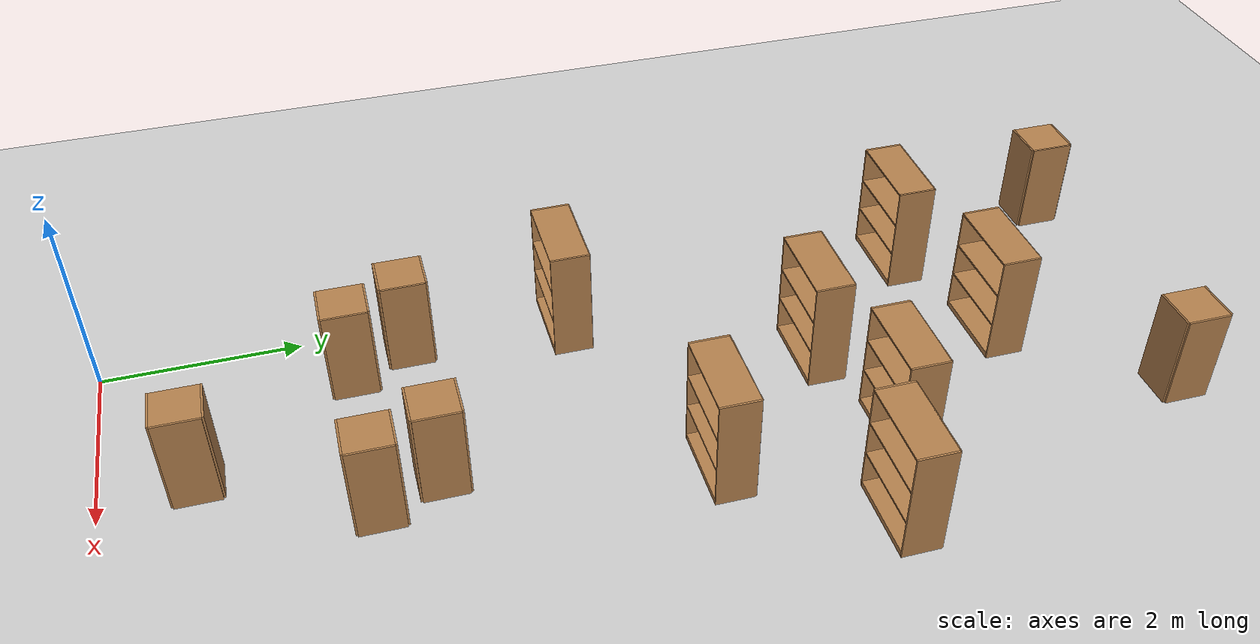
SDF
<sdf version="1.6">
 <world name="default">
  <model name="ground_plane">
   <static>1</static>
   <link name="link">
    <collision name="collision">
     <geometry><plane><normal>0 0 1</normal><size>100 100</size></plane></geometry>
     <surface><friction><ode><mu>100</mu><mu2>50</mu2></ode></friction></surface>
    </collision>
    <visual name="visual">
     <cast_shadows>0</cast_shadows>
     <geometry><plane><normal>0 0 1</normal><size>100 100</size></plane></geometry>
     <material>
      <script><uri>file://media/materials/scripts/gazebo.material</uri><name>Gazebo/Grey</name></script>
     </material>
    </visual>
   </link>
  </model>
  <model name="bookshelf_3">
   <static>1</static>
   <link name="link">
    <inertial><mass>1</mass></inertial>
    <collision name="back">
     <pose>0 0.005 0.6 0 -0 0</pose>
     <geometry><box><size>0.9 0.01 1.2</size></box></geometry>
    </collision>
    <visual name="visual1">
     <pose>0 0.005 0.6 0 -0 0</pose>
     <geometry><box><size>0.9 0.01 1.2</size></box></geometry>
     <material>
      <script><uri>file://media/materials/scripts/gazebo.material</uri><name>Gazebo/Wood</name></script>
     </material>
    </visual>
    <collision name="left_side">
     <pose>0.45 -0.195 0.6 0 -0 0</pose>
     <geometry><box><size>0.02 0.4 1.2</size></box></geometry>
    </collision>
    <visual name="visual2">
     <pose>0.45 -0.195 0.6 0 -0 0</pose>
     <geometry><box><size>0.02 0.4 1.2</size></box></geometry>
     <material>
      <script><uri>file://media/materials/scripts/gazebo.material</uri><name>Gazebo/Wood</name></script>
     </material>
    </visual>
    <collision name="right_side">
     <pose>-0.45 -0.195 0.6 0 -0 0</pose>
     <geometry><box><size>0.02 0.4 1.2</size></box></geometry>
    </collision>
    <visual name="visual3">
     <pose>-0.45 -0.195 0.6 0 -0 0</pose>
     <geometry><box><size>0.02 0.4 1.2</size></box></geometry>
     <material>
      <script><uri>file://media/materials/scripts/gazebo.material</uri><name>Gazebo/Wood</name></script>
     </material>
    </visual>
    <collision name="bottom">
     <pose>0 -0.195 0.03 0 -0 0</pose>
     <geometry><box><size>0.88 0.4 0.06</size></box></geometry>
    </collision>
    <visual name="visual4">
     <pose>0 -0.195 0.03 0 -0 0</pose>
     <geometry><box><size>0.88 0.4 0.06</size></box></geometry>
     <material>
      <script><uri>file://media/materials/scripts/gazebo.material</uri><name>Gazebo/Wood</name></script>
     </material>
    </visual>
    <collision name="top">
     <pose>0 -0.195 1.19 0 -0 0</pose>
     <geometry><box><size>0.88 0.4 0.02</size></box></geometry>
    </collision>
    <visual name="visual5">
     <pose>0 -0.195 1.19 0 -0 0</pose>
     <geometry><box><size>0.88 0.4 0.02</size></box></geometry>
     <material>
      <script><uri>file://media/materials/scripts/gazebo.material</uri><name>Gazebo/Wood</name></script>
     </material>
    </visual>
    <collision name="low_shelf">
     <pose>0 -0.195 0.43 0 -0 0</pose>
     <geometry><box><size>0.88 0.4 0.02</size></box></geometry>
    </collision>
    <visual name="visual6">
     <pose>0 -0.195 0.43 0 -0 0</pose>
     <geometry><box><size>0.88 0.4 0.02</size></box></geometry>
     <material>
      <script><uri>file://media/materials/scripts/gazebo.material</uri><name>Gazebo/Wood</name></script>
     </material>
    </visual>
    <collision name="high_shelf">
     <pose>0 -0.195 0.8 0 -0 0</pose>
     <geometry><box><size>0.88 0.4 0.02</size></box></geometry>
    </collision>
    <visual name="visual7">
     <pose>0 -0.195 0.8 0 -0 0</pose>
     <geometry><box><size>0.88 0.4 0.02</size></box></geometry>
     <material>
      <script><uri>file://media/materials/scripts/gazebo.material</uri><name>Gazebo/Wood</name></script>
     </material>
    </visual>
   </link>
   <pose>0.282204 8.65542 0 0 -0 0</pose>
  </model>
  <model name="bookshelf_4">
   <static>1</static>
   <link name="link">
    <inertial><mass>1</mass></inertial>
    <collision name="back">
     <pose>0 0.005 0.6 0 -0 0</pose>
     <geometry><box><size>0.9 0.01 1.2</size></box></geometry>
    </collision>
    <visual name="visual1">
     <pose>0 0.005 0.6 0 -0 0</pose>
     <geometry><box><size>0.9 0.01 1.2</size></box></geometry>
     <material>
      <script><uri>file://media/materials/scripts/gazebo.material</uri><name>Gazebo/Wood</name></script>
     </material>
    </visual>
    <collision name="left_side">
     <pose>0.45 -0.195 0.6 0 -0 0</pose>
     <geometry><box><size>0.02 0.4 1.2</size></box></geometry>
    </collision>
    <visual name="visual2">
     <pose>0.45 -0.195 0.6 0 -0 0</pose>
     <geometry><box><size>0.02 0.4 1.2</size></box></geometry>
     <material>
      <script><uri>file://media/materials/scripts/gazebo.material</uri><name>Gazebo/Wood</name></script>
     </material>
    </visual>
    <collision name="right_side">
     <pose>-0.45 -0.195 0.6 0 -0 0</pose>
     <geometry><box><size>0.02 0.4 1.2</size></box></geometry>
    </collision>
    <visual name="visual3">
     <pose>-0.45 -0.195 0.6 0 -0 0</pose>
     <geometry><box><size>0.02 0.4 1.2</size></box></geometry>
     <material>
      <script><uri>file://media/materials/scripts/gazebo.material</uri><name>Gazebo/Wood</name></script>
     </material>
    </visual>
    <collision name="bottom">
     <pose>0 -0.195 0.03 0 -0 0</pose>
     <geometry><box><size>0.88 0.4 0.06</size></box></geometry>
    </collision>
    <visual name="visual4">
     <pose>0 -0.195 0.03 0 -0 0</pose>
     <geometry><box><size>0.88 0.4 0.06</size></box></geometry>
     <material>
      <script><uri>file://media/materials/scripts/gazebo.material</uri><name>Gazebo/Wood</name></script>
     </material>
    </visual>
    <collision name="top">
     <pose>0 -0.195 1.19 0 -0 0</pose>
     <geometry><box><size>0.88 0.4 0.02</size></box></geometry>
    </collision>
    <visual name="visual5">
     <pose>0 -0.195 1.19 0 -0 0</pose>
     <geometry><box><size>0.88 0.4 0.02</size></box></geometry>
     <material>
      <script><uri>file://media/materials/scripts/gazebo.material</uri><name>Gazebo/Wood</name></script>
     </material>
    </visual>
    <collision name="low_shelf">
     <pose>0 -0.195 0.43 0 -0 0</pose>
     <geometry><box><size>0.88 0.4 0.02</size></box></geometry>
    </collision>
    <visual name="visual6">
     <pose>0 -0.195 0.43 0 -0 0</pose>
     <geometry><box><size>0.88 0.4 0.02</size></box></geometry>
     <material>
      <script><uri>file://media/materials/scripts/gazebo.material</uri><name>Gazebo/Wood</name></script>
     </material>
    </visual>
    <collision name="high_shelf">
     <pose>0 -0.195 0.8 0 -0 0</pose>
     <geometry><box><size>0.88 0.4 0.02</size></box></geometry>
    </collision>
    <visual name="visual7">
     <pose>0 -0.195 0.8 0 -0 0</pose>
     <geometry><box><size>0.88 0.4 0.02</size></box></geometry>
     <material>
      <script><uri>file://media/materials/scripts/gazebo.material</uri><name>Gazebo/Wood</name></script>
     </material>
    </visual>
   </link>
   <pose>2.82667 7.63192 0 0 -0 0</pose>
  </model>
  <model name="bookshelf_9">
   <static>1</static>
   <link name="link">
    <inertial><mass>1</mass></inertial>
    <collision name="back">
     <pose>0 0.005 0.6 0 -0 0</pose>
     <geometry><box><size>0.9 0.01 1.2</size></box></geometry>
    </collision>
    <visual name="visual1">
     <pose>0 0.005 0.6 0 -0 0</pose>
     <geometry><box><size>0.9 0.01 1.2</size></box></geometry>
     <material>
      <script><uri>file://media/materials/scripts/gazebo.material</uri><name>Gazebo/Wood</name></script>
     </material>
    </visual>
    <collision name="left_side">
     <pose>0.45 -0.195 0.6 0 -0 0</pose>
     <geometry><box><size>0.02 0.4 1.2</size></box></geometry>
    </collision>
    <visual name="visual2">
     <pose>0.45 -0.195 0.6 0 -0 0</pose>
     <geometry><box><size>0.02 0.4 1.2</size></box></geometry>
     <material>
      <script><uri>file://media/materials/scripts/gazebo.material</uri><name>Gazebo/Wood</name></script>
     </material>
    </visual>
    <collision name="right_side">
     <pose>-0.45 -0.195 0.6 0 -0 0</pose>
     <geometry><box><size>0.02 0.4 1.2</size></box></geometry>
    </collision>
    <visual name="visual3">
     <pose>-0.45 -0.195 0.6 0 -0 0</pose>
     <geometry><box><size>0.02 0.4 1.2</size></box></geometry>
     <material>
      <script><uri>file://media/materials/scripts/gazebo.material</uri><name>Gazebo/Wood</name></script>
     </material>
    </visual>
    <collision name="bottom">
     <pose>0 -0.195 0.03 0 -0 0</pose>
     <geometry><box><size>0.88 0.4 0.06</size></box></geometry>
    </collision>
    <visual name="visual4">
     <pose>0 -0.195 0.03 0 -0 0</pose>
     <geometry><box><size>0.88 0.4 0.06</size></box></geometry>
     <material>
      <script><uri>file://media/materials/scripts/gazebo.material</uri><name>Gazebo/Wood</name></script>
     </material>
    </visual>
    <collision name="top">
     <pose>0 -0.195 1.19 0 -0 0</pose>
     <geometry><box><size>0.88 0.4 0.02</size></box></geometry>
    </collision>
    <visual name="visual5">
     <pose>0 -0.195 1.19 0 -0 0</pose>
     <geometry><box><size>0.88 0.4 0.02</size></box></geometry>
     <material>
      <script><uri>file://media/materials/scripts/gazebo.material</uri><name>Gazebo/Wood</name></script>
     </material>
    </visual>
    <collision name="low_shelf">
     <pose>0 -0.195 0.43 0 -0 0</pose>
     <geometry><box><size>0.88 0.4 0.02</size></box></geometry>
    </collision>
    <visual name="visual6">
     <pose>0 -0.195 0.43 0 -0 0</pose>
     <geometry><box><size>0.88 0.4 0.02</size></box></geometry>
     <material>
      <script><uri>file://media/materials/scripts/gazebo.material</uri><name>Gazebo/Wood</name></script>
     </material>
    </visual>
    <collision name="high_shelf">
     <pose>0 -0.195 0.8 0 -0 0</pose>
     <geometry><box><size>0.88 0.4 0.02</size></box></geometry>
    </collision>
    <visual name="visual7">
     <pose>0 -0.195 0.8 0 -0 0</pose>
     <geometry><box><size>0.88 0.4 0.02</size></box></geometry>
     <material>
      <script><uri>file://media/materials/scripts/gazebo.material</uri><name>Gazebo/Wood</name></script>
     </material>
    </visual>
   </link>
   <pose>1.55438 7.23249 0 0 -0 0</pose>
  </model>
  <model name="bookshelf_10">
   <static>1</static>
   <link name="link">
    <inertial><mass>1</mass></inertial>
    <collision name="back">
     <pose>0 0.005 0.6 0 -0 0</pose>
     <geometry><box><size>0.9 0.01 1.2</size></box></geometry>
    </collision>
    <visual name="visual1">
     <pose>0 0.005 0.6 0 -0 0</pose>
     <geometry><box><size>0.9 0.01 1.2</size></box></geometry>
     <material>
      <script><uri>file://media/materials/scripts/gazebo.material</uri><name>Gazebo/Wood</name></script>
     </material>
    </visual>
    <collision name="left_side">
     <pose>0.45 -0.195 0.6 0 -0 0</pose>
     <geometry><box><size>0.02 0.4 1.2</size></box></geometry>
    </collision>
    <visual name="visual2">
     <pose>0.45 -0.195 0.6 0 -0 0</pose>
     <geometry><box><size>0.02 0.4 1.2</size></box></geometry>
     <material>
      <script><uri>file://media/materials/scripts/gazebo.material</uri><name>Gazebo/Wood</name></script>
     </material>
    </visual>
    <collision name="right_side">
     <pose>-0.45 -0.195 0.6 0 -0 0</pose>
     <geometry><box><size>0.02 0.4 1.2</size></box></geometry>
    </collision>
    <visual name="visual3">
     <pose>-0.45 -0.195 0.6 0 -0 0</pose>
     <geometry><box><size>0.02 0.4 1.2</size></box></geometry>
     <material>
      <script><uri>file://media/materials/scripts/gazebo.material</uri><name>Gazebo/Wood</name></script>
     </material>
    </visual>
    <collision name="bottom">
     <pose>0 -0.195 0.03 0 -0 0</pose>
     <geometry><box><size>0.88 0.4 0.06</size></box></geometry>
    </collision>
    <visual name="visual4">
     <pose>0 -0.195 0.03 0 -0 0</pose>
     <geometry><box><size>0.88 0.4 0.06</size></box></geometry>
     <material>
      <script><uri>file://media/materials/scripts/gazebo.material</uri><name>Gazebo/Wood</name></script>
     </material>
    </visual>
    <collision name="top">
     <pose>0 -0.195 1.19 0 -0 0</pose>
     <geometry><box><size>0.88 0.4 0.02</size></box></geometry>
    </collision>
    <visual name="visual5">
     <pose>0 -0.195 1.19 0 -0 0</pose>
     <geometry><box><size>0.88 0.4 0.02</size></box></geometry>
     <material>
      <script><uri>file://media/materials/scripts/gazebo.material</uri><name>Gazebo/Wood</name></script>
     </material>
    </visual>
    <collision name="low_shelf">
     <pose>0 -0.195 0.43 0 -0 0</pose>
     <geometry><box><size>0.88 0.4 0.02</size></box></geometry>
    </collision>
    <visual name="visual6">
     <pose>0 -0.195 0.43 0 -0 0</pose>
     <geometry><box><size>0.88 0.4 0.02</size></box></geometry>
     <material>
      <script><uri>file://media/materials/scripts/gazebo.material</uri><name>Gazebo/Wood</name></script>
     </material>
    </visual>
    <collision name="high_shelf">
     <pose>0 -0.195 0.8 0 -0 0</pose>
     <geometry><box><size>0.88 0.4 0.02</size></box></geometry>
    </collision>
    <visual name="visual7">
     <pose>0 -0.195 0.8 0 -0 0</pose>
     <geometry><box><size>0.88 0.4 0.02</size></box></geometry>
     <material>
      <script><uri>file://media/materials/scripts/gazebo.material</uri><name>Gazebo/Wood</name></script>
     </material>
    </visual>
   </link>
   <pose>3.87857 7.20896 0 0 -0 0</pose>
  </model>
  <model name="bookshelf_14">
   <static>1</static>
   <link name="link">
    <inertial><mass>1</mass></inertial>
    <collision name="back">
     <pose>0 0.005 0.6 0 -0 0</pose>
     <geometry><box><size>0.9 0.01 1.2</size></box></geometry>
    </collision>
    <visual name="visual1">
     <pose>0 0.005 0.6 0 -0 0</pose>
     <geometry><box><size>0.9 0.01 1.2</size></box></geometry>
     <material>
      <script><uri>file://media/materials/scripts/gazebo.material</uri><name>Gazebo/Wood</name></script>
     </material>
    </visual>
    <collision name="left_side">
     <pose>0.45 -0.195 0.6 0 -0 0</pose>
     <geometry><box><size>0.02 0.4 1.2</size></box></geometry>
    </collision>
    <visual name="visual2">
     <pose>0.45 -0.195 0.6 0 -0 0</pose>
     <geometry><box><size>0.02 0.4 1.2</size></box></geometry>
     <material>
      <script><uri>file://media/materials/scripts/gazebo.material</uri><name>Gazebo/Wood</name></script>
     </material>
    </visual>
    <collision name="right_side">
     <pose>-0.45 -0.195 0.6 0 -0 0</pose>
     <geometry><box><size>0.02 0.4 1.2</size></box></geometry>
    </collision>
    <visual name="visual3">
     <pose>-0.45 -0.195 0.6 0 -0 0</pose>
     <geometry><box><size>0.02 0.4 1.2</size></box></geometry>
     <material>
      <script><uri>file://media/materials/scripts/gazebo.material</uri><name>Gazebo/Wood</name></script>
     </material>
    </visual>
    <collision name="bottom">
     <pose>0 -0.195 0.03 0 -0 0</pose>
     <geometry><box><size>0.88 0.4 0.06</size></box></geometry>
    </collision>
    <visual name="visual4">
     <pose>0 -0.195 0.03 0 -0 0</pose>
     <geometry><box><size>0.88 0.4 0.06</size></box></geometry>
     <material>
      <script><uri>file://media/materials/scripts/gazebo.material</uri><name>Gazebo/Wood</name></script>
     </material>
    </visual>
    <collision name="top">
     <pose>0 -0.195 1.19 0 -0 0</pose>
     <geometry><box><size>0.88 0.4 0.02</size></box></geometry>
    </collision>
    <visual name="visual5">
     <pose>0 -0.195 1.19 0 -0 0</pose>
     <geometry><box><size>0.88 0.4 0.02</size></box></geometry>
     <material>
      <script><uri>file://media/materials/scripts/gazebo.material</uri><name>Gazebo/Wood</name></script>
     </material>
    </visual>
    <collision name="low_shelf">
     <pose>0 -0.195 0.43 0 -0 0</pose>
     <geometry><box><size>0.88 0.4 0.02</size></box></geometry>
    </collision>
    <visual name="visual6">
     <pose>0 -0.195 0.43 0 -0 0</pose>
     <geometry><box><size>0.88 0.4 0.02</size></box></geometry>
     <material>
      <script><uri>file://media/materials/scripts/gazebo.material</uri><name>Gazebo/Wood</name></script>
     </material>
    </visual>
    <collision name="high_shelf">
     <pose>0 -0.195 0.8 0 -0 0</pose>
     <geometry><box><size>0.88 0.4 0.02</size></box></geometry>
    </collision>
    <visual name="visual7">
     <pose>0 -0.195 0.8 0 -0 0</pose>
     <geometry><box><size>0.88 0.4 0.02</size></box></geometry>
     <material>
      <script><uri>file://media/materials/scripts/gazebo.material</uri><name>Gazebo/Wood</name></script>
     </material>
    </visual>
   </link>
   <pose>0.393758 4.89774 0 0 -0 0</pose>
  </model>
  <model name="bookshelf_15">
   <static>1</static>
   <link name="link">
    <inertial><mass>1</mass></inertial>
    <collision name="back">
     <pose>0 0.005 0.6 0 -0 0</pose>
     <geometry><box><size>0.9 0.01 1.2</size></box></geometry>
    </collision>
    <visual name="visual1">
     <pose>0 0.005 0.6 0 -0 0</pose>
     <geometry><box><size>0.9 0.01 1.2</size></box></geometry>
     <material>
      <script><uri>file://media/materials/scripts/gazebo.material</uri><name>Gazebo/Wood</name></script>
     </material>
    </visual>
    <collision name="left_side">
     <pose>0.45 -0.195 0.6 0 -0 0</pose>
     <geometry><box><size>0.02 0.4 1.2</size></box></geometry>
    </collision>
    <visual name="visual2">
     <pose>0.45 -0.195 0.6 0 -0 0</pose>
     <geometry><box><size>0.02 0.4 1.2</size></box></geometry>
     <material>
      <script><uri>file://media/materials/scripts/gazebo.material</uri><name>Gazebo/Wood</name></script>
     </material>
    </visual>
    <collision name="right_side">
     <pose>-0.45 -0.195 0.6 0 -0 0</pose>
     <geometry><box><size>0.02 0.4 1.2</size></box></geometry>
    </collision>
    <visual name="visual3">
     <pose>-0.45 -0.195 0.6 0 -0 0</pose>
     <geometry><box><size>0.02 0.4 1.2</size></box></geometry>
     <material>
      <script><uri>file://media/materials/scripts/gazebo.material</uri><name>Gazebo/Wood</name></script>
     </material>
    </visual>
    <collision name="bottom">
     <pose>0 -0.195 0.03 0 -0 0</pose>
     <geometry><box><size>0.88 0.4 0.06</size></box></geometry>
    </collision>
    <visual name="visual4">
     <pose>0 -0.195 0.03 0 -0 0</pose>
     <geometry><box><size>0.88 0.4 0.06</size></box></geometry>
     <material>
      <script><uri>file://media/materials/scripts/gazebo.material</uri><name>Gazebo/Wood</name></script>
     </material>
    </visual>
    <collision name="top">
     <pose>0 -0.195 1.19 0 -0 0</pose>
     <geometry><box><size>0.88 0.4 0.02</size></box></geometry>
    </collision>
    <visual name="visual5">
     <pose>0 -0.195 1.19 0 -0 0</pose>
     <geometry><box><size>0.88 0.4 0.02</size></box></geometry>
     <material>
      <script><uri>file://media/materials/scripts/gazebo.material</uri><name>Gazebo/Wood</name></script>
     </material>
    </visual>
    <collision name="low_shelf">
     <pose>0 -0.195 0.43 0 -0 0</pose>
     <geometry><box><size>0.88 0.4 0.02</size></box></geometry>
    </collision>
    <visual name="visual6">
     <pose>0 -0.195 0.43 0 -0 0</pose>
     <geometry><box><size>0.88 0.4 0.02</size></box></geometry>
     <material>
      <script><uri>file://media/materials/scripts/gazebo.material</uri><name>Gazebo/Wood</name></script>
     </material>
    </visual>
    <collision name="high_shelf">
     <pose>0 -0.195 0.8 0 -0 0</pose>
     <geometry><box><size>0.88 0.4 0.02</size></box></geometry>
    </collision>
    <visual name="visual7">
     <pose>0 -0.195 0.8 0 -0 0</pose>
     <geometry><box><size>0.88 0.4 0.02</size></box></geometry>
     <material>
      <script><uri>file://media/materials/scripts/gazebo.material</uri><name>Gazebo/Wood</name></script>
     </material>
    </visual>
   </link>
   <pose>2.8357 5.83301 0 0 -0 0</pose>
  </model>
  <model name="cabinet_4">
   <static>1</static>
   <link name="cabinet_bottom_plate">
    <inertial>
     <pose>0 0 -1 0 -0 0</pose>
     <inertia><ixx>2.05</ixx><ixy>0</ixy><ixz>0</ixz><iyy>2.05</iyy><iyz>0</iyz><izz>2.05</izz></inertia>
     <mass>25</mass>
    </inertial>
    <collision name="cabinet_bottom_plate_geom">
     <pose>0 0 0.01 0 -0 0</pose>
     <geometry><box><size>0.45 0.45 0.02</size></box></geometry>
    </collision>
    <visual name="cabinet_bottom_plate_geom_visual">
     <pose>0 0 0.01 0 -0 0</pose>
     <geometry><box><size>0.45 0.45 0.02</size></box></geometry>
     <material>
      <script><uri>file://media/materials/scripts/gazebo.material</uri><name>Gazebo/Wood</name></script>
     </material>
    </visual>
    <collision name="cabinet_bottom_plate_geom_cabinet_back_plate">
     <pose>0.235 0 0.51 0 -0 0</pose>
     <geometry><box><size>0.02 0.45 1.02</size></box></geometry>
    </collision>
    <visual name="cabinet_bottom_plate_geom_cabinet_back_plate_visual">
     <pose>0.235 0 0.51 0 -0 0</pose>
     <geometry><box><size>0.02 0.45 1.02</size></box></geometry>
     <material>
      <script><uri>file://media/materials/scripts/gazebo.material</uri><name>Gazebo/Wood</name></script>
     </material>
    </visual>
    <collision name="cabinet_bottom_plate_geom_cabinet_left_plate">
     <pose>0 0.235 0.51 0 -0 0</pose>
     <geometry><box><size>0.45 0.02 1.02</size></box></geometry>
    </collision>
    <visual name="cabinet_bottom_plate_geom_cabinet_left_plate_visual">
     <pose>0 0.235 0.51 0 -0 0</pose>
     <geometry><box><size>0.45 0.02 1.02</size></box></geometry>
     <material>
      <script><uri>file://media/materials/scripts/gazebo.material</uri><name>Gazebo/Wood</name></script>
     </material>
    </visual>
    <collision name="cabinet_bottom_plate_geom_cabinet_middle_plate">
     <pose>0 0 0.51 0 -0 0</pose>
     <geometry><box><size>0.45 0.45 0.02</size></box></geometry>
    </collision>
    <visual name="cabinet_bottom_plate_geom_cabinet_middle_plate_visual">
     <pose>0 0 0.51 0 -0 0</pose>
     <geometry><box><size>0.45 0.45 0.02</size></box></geometry>
     <material>
      <script><uri>file://media/materials/scripts/gazebo.material</uri><name>Gazebo/Wood</name></script>
     </material>
    </visual>
    <collision name="cabinet_bottom_plate_geom_cabinet_right_plate">
     <pose>0 -0.235 0.51 0 -0 0</pose>
     <geometry><box><size>0.45 0.02 1.02</size></box></geometry>
    </collision>
    <visual name="cabinet_bottom_plate_geom_cabinet_right_plate_visual">
     <pose>0 -0.235 0.51 0 -0 0</pose>
     <geometry><box><size>0.45 0.02 1.02</size></box></geometry>
     <material>
      <script><uri>file://media/materials/scripts/gazebo.material</uri><name>Gazebo/Wood</name></script>
     </material>
    </visual>
    <collision name="cabinet_bottom_plate_geom_cabinet_top_plate">
     <pose>0 0 1.01 0 -0 0</pose>
     <geometry><box><size>0.45 0.45 0.02</size></box></geometry>
    </collision>
    <visual name="cabinet_bottom_plate_geom_cabinet_top_plate_visual">
     <pose>0 0 1.01 0 -0 0</pose>
     <geometry><box><size>0.45 0.45 0.02</size></box></geometry>
     <material>
      <script><uri>file://media/materials/scripts/gazebo.material</uri><name>Gazebo/Wood</name></script>
     </material>
    </visual>
   </link>
   <pose>0.37922 3.07389 0 0 -0 0</pose>
  </model>
  <model name="cabinet_5">
   <static>1</static>
   <link name="cabinet_bottom_plate">
    <inertial>
     <pose>0 0 -1 0 -0 0</pose>
     <inertia><ixx>2.05</ixx><ixy>0</ixy><ixz>0</ixz><iyy>2.05</iyy><iyz>0</iyz><izz>2.05</izz></inertia>
     <mass>25</mass>
    </inertial>
    <collision name="cabinet_bottom_plate_geom">
     <pose>0 0 0.01 0 -0 0</pose>
     <geometry><box><size>0.45 0.45 0.02</size></box></geometry>
    </collision>
    <visual name="cabinet_bottom_plate_geom_visual">
     <pose>0 0 0.01 0 -0 0</pose>
     <geometry><box><size>0.45 0.45 0.02</size></box></geometry>
     <material>
      <script><uri>file://media/materials/scripts/gazebo.material</uri><name>Gazebo/Wood</name></script>
     </material>
    </visual>
    <collision name="cabinet_bottom_plate_geom_cabinet_back_plate">
     <pose>0.235 0 0.51 0 -0 0</pose>
     <geometry><box><size>0.02 0.45 1.02</size></box></geometry>
    </collision>
    <visual name="cabinet_bottom_plate_geom_cabinet_back_plate_visual">
     <pose>0.235 0 0.51 0 -0 0</pose>
     <geometry><box><size>0.02 0.45 1.02</size></box></geometry>
     <material>
      <script><uri>file://media/materials/scripts/gazebo.material</uri><name>Gazebo/Wood</name></script>
     </material>
    </visual>
    <collision name="cabinet_bottom_plate_geom_cabinet_left_plate">
     <pose>0 0.235 0.51 0 -0 0</pose>
     <geometry><box><size>0.45 0.02 1.02</size></box></geometry>
    </collision>
    <visual name="cabinet_bottom_plate_geom_cabinet_left_plate_visual">
     <pose>0 0.235 0.51 0 -0 0</pose>
     <geometry><box><size>0.45 0.02 1.02</size></box></geometry>
     <material>
      <script><uri>file://media/materials/scripts/gazebo.material</uri><name>Gazebo/Wood</name></script>
     </material>
    </visual>
    <collision name="cabinet_bottom_plate_geom_cabinet_middle_plate">
     <pose>0 0 0.51 0 -0 0</pose>
     <geometry><box><size>0.45 0.45 0.02</size></box></geometry>
    </collision>
    <visual name="cabinet_bottom_plate_geom_cabinet_middle_plate_visual">
     <pose>0 0 0.51 0 -0 0</pose>
     <geometry><box><size>0.45 0.45 0.02</size></box></geometry>
     <material>
      <script><uri>file://media/materials/scripts/gazebo.material</uri><name>Gazebo/Wood</name></script>
     </material>
    </visual>
    <collision name="cabinet_bottom_plate_geom_cabinet_right_plate">
     <pose>0 -0.235 0.51 0 -0 0</pose>
     <geometry><box><size>0.45 0.02 1.02</size></box></geometry>
    </collision>
    <visual name="cabinet_bottom_plate_geom_cabinet_right_plate_visual">
     <pose>0 -0.235 0.51 0 -0 0</pose>
     <geometry><box><size>0.45 0.02 1.02</size></box></geometry>
     <material>
      <script><uri>file://media/materials/scripts/gazebo.material</uri><name>Gazebo/Wood</name></script>
     </material>
    </visual>
    <collision name="cabinet_bottom_plate_geom_cabinet_top_plate">
     <pose>0 0 1.01 0 -0 0</pose>
     <geometry><box><size>0.45 0.45 0.02</size></box></geometry>
    </collision>
    <visual name="cabinet_bottom_plate_geom_cabinet_top_plate_visual">
     <pose>0 0 1.01 0 -0 0</pose>
     <geometry><box><size>0.45 0.45 0.02</size></box></geometry>
     <material>
      <script><uri>file://media/materials/scripts/gazebo.material</uri><name>Gazebo/Wood</name></script>
     </material>
    </visual>
   </link>
   <pose>2.29018 3.10276 0 0 -0 0</pose>
  </model>
  <model name="cabinet_10">
   <static>1</static>
   <link name="cabinet_bottom_plate">
    <inertial>
     <pose>0 0 -1 0 -0 0</pose>
     <inertia><ixx>2.05</ixx><ixy>0</ixy><ixz>0</ixz><iyy>2.05</iyy><iyz>0</iyz><izz>2.05</izz></inertia>
     <mass>25</mass>
    </inertial>
    <collision name="cabinet_bottom_plate_geom">
     <pose>0 0 0.01 0 -0 0</pose>
     <geometry><box><size>0.45 0.45 0.02</size></box></geometry>
    </collision>
    <visual name="cabinet_bottom_plate_geom_visual">
     <pose>0 0 0.01 0 -0 0</pose>
     <geometry><box><size>0.45 0.45 0.02</size></box></geometry>
     <material>
      <script><uri>file://media/materials/scripts/gazebo.material</uri><name>Gazebo/Wood</name></script>
     </material>
    </visual>
    <collision name="cabinet_bottom_plate_geom_cabinet_back_plate">
     <pose>0.235 0 0.51 0 -0 0</pose>
     <geometry><box><size>0.02 0.45 1.02</size></box></geometry>
    </collision>
    <visual name="cabinet_bottom_plate_geom_cabinet_back_plate_visual">
     <pose>0.235 0 0.51 0 -0 0</pose>
     <geometry><box><size>0.02 0.45 1.02</size></box></geometry>
     <material>
      <script><uri>file://media/materials/scripts/gazebo.material</uri><name>Gazebo/Wood</name></script>
     </material>
    </visual>
    <collision name="cabinet_bottom_plate_geom_cabinet_left_plate">
     <pose>0 0.235 0.51 0 -0 0</pose>
     <geometry><box><size>0.45 0.02 1.02</size></box></geometry>
    </collision>
    <visual name="cabinet_bottom_plate_geom_cabinet_left_plate_visual">
     <pose>0 0.235 0.51 0 -0 0</pose>
     <geometry><box><size>0.45 0.02 1.02</size></box></geometry>
     <material>
      <script><uri>file://media/materials/scripts/gazebo.material</uri><name>Gazebo/Wood</name></script>
     </material>
    </visual>
    <collision name="cabinet_bottom_plate_geom_cabinet_middle_plate">
     <pose>0 0 0.51 0 -0 0</pose>
     <geometry><box><size>0.45 0.45 0.02</size></box></geometry>
    </collision>
    <visual name="cabinet_bottom_plate_geom_cabinet_middle_plate_visual">
     <pose>0 0 0.51 0 -0 0</pose>
     <geometry><box><size>0.45 0.45 0.02</size></box></geometry>
     <material>
      <script><uri>file://media/materials/scripts/gazebo.material</uri><name>Gazebo/Wood</name></script>
     </material>
    </visual>
    <collision name="cabinet_bottom_plate_geom_cabinet_right_plate">
     <pose>0 -0.235 0.51 0 -0 0</pose>
     <geometry><box><size>0.45 0.02 1.02</size></box></geometry>
    </collision>
    <visual name="cabinet_bottom_plate_geom_cabinet_right_plate_visual">
     <pose>0 -0.235 0.51 0 -0 0</pose>
     <geometry><box><size>0.45 0.02 1.02</size></box></geometry>
     <material>
      <script><uri>file://media/materials/scripts/gazebo.material</uri><name>Gazebo/Wood</name></script>
     </material>
    </visual>
    <collision name="cabinet_bottom_plate_geom_cabinet_top_plate">
     <pose>0 0 1.01 0 -0 0</pose>
     <geometry><box><size>0.45 0.45 0.02</size></box></geometry>
    </collision>
    <visual name="cabinet_bottom_plate_geom_cabinet_top_plate_visual">
     <pose>0 0 1.01 0 -0 0</pose>
     <geometry><box><size>0.45 0.45 0.02</size></box></geometry>
     <material>
      <script><uri>file://media/materials/scripts/gazebo.material</uri><name>Gazebo/Wood</name></script>
     </material>
    </visual>
   </link>
   <pose>0.675887 2.4729 0 0 -0 0</pose>
  </model>
  <model name="cabinet_11">
   <static>1</static>
   <link name="cabinet_bottom_plate">
    <inertial>
     <pose>0 0 -1 0 -0 0</pose>
     <inertia><ixx>2.05</ixx><ixy>0</ixy><ixz>0</ixz><iyy>2.05</iyy><iyz>0</iyz><izz>2.05</izz></inertia>
     <mass>25</mass>
    </inertial>
    <collision name="cabinet_bottom_plate_geom">
     <pose>0 0 0.01 0 -0 0</pose>
     <geometry><box><size>0.45 0.45 0.02</size></box></geometry>
    </collision>
    <visual name="cabinet_bottom_plate_geom_visual">
     <pose>0 0 0.01 0 -0 0</pose>
     <geometry><box><size>0.45 0.45 0.02</size></box></geometry>
     <material>
      <script><uri>file://media/materials/scripts/gazebo.material</uri><name>Gazebo/Wood</name></script>
     </material>
    </visual>
    <collision name="cabinet_bottom_plate_geom_cabinet_back_plate">
     <pose>0.235 0 0.51 0 -0 0</pose>
     <geometry><box><size>0.02 0.45 1.02</size></box></geometry>
    </collision>
    <visual name="cabinet_bottom_plate_geom_cabinet_back_plate_visual">
     <pose>0.235 0 0.51 0 -0 0</pose>
     <geometry><box><size>0.02 0.45 1.02</size></box></geometry>
     <material>
      <script><uri>file://media/materials/scripts/gazebo.material</uri><name>Gazebo/Wood</name></script>
     </material>
    </visual>
    <collision name="cabinet_bottom_plate_geom_cabinet_left_plate">
     <pose>0 0.235 0.51 0 -0 0</pose>
     <geometry><box><size>0.45 0.02 1.02</size></box></geometry>
    </collision>
    <visual name="cabinet_bottom_plate_geom_cabinet_left_plate_visual">
     <pose>0 0.235 0.51 0 -0 0</pose>
     <geometry><box><size>0.45 0.02 1.02</size></box></geometry>
     <material>
      <script><uri>file://media/materials/scripts/gazebo.material</uri><name>Gazebo/Wood</name></script>
     </material>
    </visual>
    <collision name="cabinet_bottom_plate_geom_cabinet_middle_plate">
     <pose>0 0 0.51 0 -0 0</pose>
     <geometry><box><size>0.45 0.45 0.02</size></box></geometry>
    </collision>
    <visual name="cabinet_bottom_plate_geom_cabinet_middle_plate_visual">
     <pose>0 0 0.51 0 -0 0</pose>
     <geometry><box><size>0.45 0.45 0.02</size></box></geometry>
     <material>
      <script><uri>file://media/materials/scripts/gazebo.material</uri><name>Gazebo/Wood</name></script>
     </material>
    </visual>
    <collision name="cabinet_bottom_plate_geom_cabinet_right_plate">
     <pose>0 -0.235 0.51 0 -0 0</pose>
     <geometry><box><size>0.45 0.02 1.02</size></box></geometry>
    </collision>
    <visual name="cabinet_bottom_plate_geom_cabinet_right_plate_visual">
     <pose>0 -0.235 0.51 0 -0 0</pose>
     <geometry><box><size>0.45 0.02 1.02</size></box></geometry>
     <material>
      <script><uri>file://media/materials/scripts/gazebo.material</uri><name>Gazebo/Wood</name></script>
     </material>
    </visual>
    <collision name="cabinet_bottom_plate_geom_cabinet_top_plate">
     <pose>0 0 1.01 0 -0 0</pose>
     <geometry><box><size>0.45 0.45 0.02</size></box></geometry>
    </collision>
    <visual name="cabinet_bottom_plate_geom_cabinet_top_plate_visual">
     <pose>0 0 1.01 0 -0 0</pose>
     <geometry><box><size>0.45 0.45 0.02</size></box></geometry>
     <material>
      <script><uri>file://media/materials/scripts/gazebo.material</uri><name>Gazebo/Wood</name></script>
     </material>
    </visual>
   </link>
   <pose>2.53969 2.48346 0 0 -0 0</pose>
  </model>
  <model name="cabinet_15">
   <static>1</static>
   <link name="cabinet_bottom_plate">
    <inertial>
     <pose>0 0 -1 0 -0 0</pose>
     <inertia><ixx>2.05</ixx><ixy>0</ixy><ixz>0</ixz><iyy>2.05</iyy><iyz>0</iyz><izz>2.05</izz></inertia>
     <mass>25</mass>
    </inertial>
    <collision name="cabinet_bottom_plate_geom">
     <pose>0 0 0.01 0 -0 0</pose>
     <geometry><box><size>0.45 0.45 0.02</size></box></geometry>
    </collision>
    <visual name="cabinet_bottom_plate_geom_visual">
     <pose>0 0 0.01 0 -0 0</pose>
     <geometry><box><size>0.45 0.45 0.02</size></box></geometry>
     <material>
      <script><uri>file://media/materials/scripts/gazebo.material</uri><name>Gazebo/Wood</name></script>
     </material>
    </visual>
    <collision name="cabinet_bottom_plate_geom_cabinet_back_plate">
     <pose>0.235 0 0.51 0 -0 0</pose>
     <geometry><box><size>0.02 0.45 1.02</size></box></geometry>
    </collision>
    <visual name="cabinet_bottom_plate_geom_cabinet_back_plate_visual">
     <pose>0.235 0 0.51 0 -0 0</pose>
     <geometry><box><size>0.02 0.45 1.02</size></box></geometry>
     <material>
      <script><uri>file://media/materials/scripts/gazebo.material</uri><name>Gazebo/Wood</name></script>
     </material>
    </visual>
    <collision name="cabinet_bottom_plate_geom_cabinet_left_plate">
     <pose>0 0.235 0.51 0 -0 0</pose>
     <geometry><box><size>0.45 0.02 1.02</size></box></geometry>
    </collision>
    <visual name="cabinet_bottom_plate_geom_cabinet_left_plate_visual">
     <pose>0 0.235 0.51 0 -0 0</pose>
     <geometry><box><size>0.45 0.02 1.02</size></box></geometry>
     <material>
      <script><uri>file://media/materials/scripts/gazebo.material</uri><name>Gazebo/Wood</name></script>
     </material>
    </visual>
    <collision name="cabinet_bottom_plate_geom_cabinet_middle_plate">
     <pose>0 0 0.51 0 -0 0</pose>
     <geometry><box><size>0.45 0.45 0.02</size></box></geometry>
    </collision>
    <visual name="cabinet_bottom_plate_geom_cabinet_middle_plate_visual">
     <pose>0 0 0.51 0 -0 0</pose>
     <geometry><box><size>0.45 0.45 0.02</size></box></geometry>
     <material>
      <script><uri>file://media/materials/scripts/gazebo.material</uri><name>Gazebo/Wood</name></script>
     </material>
    </visual>
    <collision name="cabinet_bottom_plate_geom_cabinet_right_plate">
     <pose>0 -0.235 0.51 0 -0 0</pose>
     <geometry><box><size>0.45 0.02 1.02</size></box></geometry>
    </collision>
    <visual name="cabinet_bottom_plate_geom_cabinet_right_plate_visual">
     <pose>0 -0.235 0.51 0 -0 0</pose>
     <geometry><box><size>0.45 0.02 1.02</size></box></geometry>
     <material>
      <script><uri>file://media/materials/scripts/gazebo.material</uri><name>Gazebo/Wood</name></script>
     </material>
    </visual>
    <collision name="cabinet_bottom_plate_geom_cabinet_top_plate">
     <pose>0 0 1.01 0 -0 0</pose>
     <geometry><box><size>0.45 0.45 0.02</size></box></geometry>
    </collision>
    <visual name="cabinet_bottom_plate_geom_cabinet_top_plate_visual">
     <pose>0 0 1.01 0 -0 0</pose>
     <geometry><box><size>0.45 0.45 0.02</size></box></geometry>
     <material>
      <script><uri>file://media/materials/scripts/gazebo.material</uri><name>Gazebo/Wood</name></script>
     </material>
    </visual>
   </link>
   <pose>1.74055 0.902917 0 0 -0 0</pose>
  </model>
  <model name="cabinet_54">
   <static>1</static>
   <link name="cabinet_bottom_plate">
    <inertial>
     <pose>0 0 -1 0 -0 0</pose>
     <inertia><ixx>2.05</ixx><ixy>0</ixy><ixz>0</ixz><iyy>2.05</iyy><iyz>0</iyz><izz>2.05</izz></inertia>
     <mass>25</mass>
    </inertial>
    <collision name="cabinet_bottom_plate_geom">
     <pose>0 0 0.01 0 -0 0</pose>
     <geometry><box><size>0.45 0.45 0.02</size></box></geometry>
    </collision>
    <visual name="cabinet_bottom_plate_geom_visual">
     <pose>0 0 0.01 0 -0 0</pose>
     <geometry><box><size>0.45 0.45 0.02</size></box></geometry>
     <material>
      <script><uri>file://media/materials/scripts/gazebo.material</uri><name>Gazebo/Wood</name></script>
     </material>
    </visual>
    <collision name="cabinet_bottom_plate_geom_cabinet_back_plate">
     <pose>0.235 0 0.51 0 -0 0</pose>
     <geometry><box><size>0.02 0.45 1.02</size></box></geometry>
    </collision>
    <visual name="cabinet_bottom_plate_geom_cabinet_back_plate_visual">
     <pose>0.235 0 0.51 0 -0 0</pose>
     <geometry><box><size>0.02 0.45 1.02</size></box></geometry>
     <material>
      <script><uri>file://media/materials/scripts/gazebo.material</uri><name>Gazebo/Wood</name></script>
     </material>
    </visual>
    <collision name="cabinet_bottom_plate_geom_cabinet_left_plate">
     <pose>0 0.235 0.51 0 -0 0</pose>
     <geometry><box><size>0.45 0.02 1.02</size></box></geometry>
    </collision>
    <visual name="cabinet_bottom_plate_geom_cabinet_left_plate_visual">
     <pose>0 0.235 0.51 0 -0 0</pose>
     <geometry><box><size>0.45 0.02 1.02</size></box></geometry>
     <material>
      <script><uri>file://media/materials/scripts/gazebo.material</uri><name>Gazebo/Wood</name></script>
     </material>
    </visual>
    <collision name="cabinet_bottom_plate_geom_cabinet_middle_plate">
     <pose>0 0 0.51 0 -0 0</pose>
     <geometry><box><size>0.45 0.45 0.02</size></box></geometry>
    </collision>
    <visual name="cabinet_bottom_plate_geom_cabinet_middle_plate_visual">
     <pose>0 0 0.51 0 -0 0</pose>
     <geometry><box><size>0.45 0.45 0.02</size></box></geometry>
     <material>
      <script><uri>file://media/materials/scripts/gazebo.material</uri><name>Gazebo/Wood</name></script>
     </material>
    </visual>
    <collision name="cabinet_bottom_plate_geom_cabinet_right_plate">
     <pose>0 -0.235 0.51 0 -0 0</pose>
     <geometry><box><size>0.45 0.02 1.02</size></box></geometry>
    </collision>
    <visual name="cabinet_bottom_plate_geom_cabinet_right_plate_visual">
     <pose>0 -0.235 0.51 0 -0 0</pose>
     <geometry><box><size>0.45 0.02 1.02</size></box></geometry>
     <material>
      <script><uri>file://media/materials/scripts/gazebo.material</uri><name>Gazebo/Wood</name></script>
     </material>
    </visual>
    <collision name="cabinet_bottom_plate_geom_cabinet_top_plate">
     <pose>0 0 1.01 0 -0 0</pose>
     <geometry><box><size>0.45 0.45 0.02</size></box></geometry>
    </collision>
    <visual name="cabinet_bottom_plate_geom_cabinet_top_plate_visual">
     <pose>0 0 1.01 0 -0 0</pose>
     <geometry><box><size>0.45 0.45 0.02</size></box></geometry>
     <material>
      <script><uri>file://media/materials/scripts/gazebo.material</uri><name>Gazebo/Wood</name></script>
     </material>
    </visual>
   </link>
   <pose>-0.127406 10.4027 0 0 -0 0</pose>
  </model>
  <model name="bookshelf_53">
   <static>1</static>
   <link name="link">
    <inertial><mass>1</mass></inertial>
    <collision name="back">
     <pose>0 0.005 0.6 0 -0 0</pose>
     <geometry><box><size>0.9 0.01 1.2</size></box></geometry>
    </collision>
    <visual name="visual1">
     <pose>0 0.005 0.6 0 -0 0</pose>
     <geometry><box><size>0.9 0.01 1.2</size></box></geometry>
     <material>
      <script><uri>file://media/materials/scripts/gazebo.material</uri><name>Gazebo/Wood</name></script>
     </material>
    </visual>
    <collision name="left_side">
     <pose>0.45 -0.195 0.6 0 -0 0</pose>
     <geometry><box><size>0.02 0.4 1.2</size></box></geometry>
    </collision>
    <visual name="visual2">
     <pose>0.45 -0.195 0.6 0 -0 0</pose>
     <geometry><box><size>0.02 0.4 1.2</size></box></geometry>
     <material>
      <script><uri>file://media/materials/scripts/gazebo.material</uri><name>Gazebo/Wood</name></script>
     </material>
    </visual>
    <collision name="right_side">
     <pose>-0.45 -0.195 0.6 0 -0 0</pose>
     <geometry><box><size>0.02 0.4 1.2</size></box></geometry>
    </collision>
    <visual name="visual3">
     <pose>-0.45 -0.195 0.6 0 -0 0</pose>
     <geometry><box><size>0.02 0.4 1.2</size></box></geometry>
     <material>
      <script><uri>file://media/materials/scripts/gazebo.material</uri><name>Gazebo/Wood</name></script>
     </material>
    </visual>
    <collision name="bottom">
     <pose>0 -0.195 0.03 0 -0 0</pose>
     <geometry><box><size>0.88 0.4 0.06</size></box></geometry>
    </collision>
    <visual name="visual4">
     <pose>0 -0.195 0.03 0 -0 0</pose>
     <geometry><box><size>0.88 0.4 0.06</size></box></geometry>
     <material>
      <script><uri>file://media/materials/scripts/gazebo.material</uri><name>Gazebo/Wood</name></script>
     </material>
    </visual>
    <collision name="top">
     <pose>0 -0.195 1.19 0 -0 0</pose>
     <geometry><box><size>0.88 0.4 0.02</size></box></geometry>
    </collision>
    <visual name="visual5">
     <pose>0 -0.195 1.19 0 -0 0</pose>
     <geometry><box><size>0.88 0.4 0.02</size></box></geometry>
     <material>
      <script><uri>file://media/materials/scripts/gazebo.material</uri><name>Gazebo/Wood</name></script>
     </material>
    </visual>
    <collision name="low_shelf">
     <pose>0 -0.195 0.43 0 -0 0</pose>
     <geometry><box><size>0.88 0.4 0.02</size></box></geometry>
    </collision>
    <visual name="visual6">
     <pose>0 -0.195 0.43 0 -0 0</pose>
     <geometry><box><size>0.88 0.4 0.02</size></box></geometry>
     <material>
      <script><uri>file://media/materials/scripts/gazebo.material</uri><name>Gazebo/Wood</name></script>
     </material>
    </visual>
    <collision name="high_shelf">
     <pose>0 -0.195 0.8 0 -0 0</pose>
     <geometry><box><size>0.88 0.4 0.02</size></box></geometry>
    </collision>
    <visual name="visual7">
     <pose>0 -0.195 0.8 0 -0 0</pose>
     <geometry><box><size>0.88 0.4 0.02</size></box></geometry>
     <material>
      <script><uri>file://media/materials/scripts/gazebo.material</uri><name>Gazebo/Wood</name></script>
     </material>
    </visual>
   </link>
   <pose>1.66671 9.14105 0 0 -0 0</pose>
  </model>
  <model name="cabinet_55">
   <static>1</static>
   <link name="cabinet_bottom_plate">
    <inertial>
     <pose>0 0 -1 0 -0 0</pose>
     <inertia><ixx>2.05</ixx><ixy>0</ixy><ixz>0</ixz><iyy>2.05</iyy><iyz>0</iyz><izz>2.05</izz></inertia>
     <mass>25</mass>
    </inertial>
    <collision name="cabinet_bottom_plate_geom">
     <pose>0 0 0.01 0 -0 0</pose>
     <geometry><box><size>0.45 0.45 0.02</size></box></geometry>
    </collision>
    <visual name="cabinet_bottom_plate_geom_visual">
     <pose>0 0 0.01 0 -0 0</pose>
     <geometry><box><size>0.45 0.45 0.02</size></box></geometry>
     <material>
      <script><uri>file://media/materials/scripts/gazebo.material</uri><name>Gazebo/Wood</name></script>
     </material>
    </visual>
    <collision name="cabinet_bottom_plate_geom_cabinet_back_plate">
     <pose>0.235 0 0.51 0 -0 0</pose>
     <geometry><box><size>0.02 0.45 1.02</size></box></geometry>
    </collision>
    <visual name="cabinet_bottom_plate_geom_cabinet_back_plate_visual">
     <pose>0.235 0 0.51 0 -0 0</pose>
     <geometry><box><size>0.02 0.45 1.02</size></box></geometry>
     <material>
      <script><uri>file://media/materials/scripts/gazebo.material</uri><name>Gazebo/Wood</name></script>
     </material>
    </visual>
    <collision name="cabinet_bottom_plate_geom_cabinet_left_plate">
     <pose>0 0.235 0.51 0 -0 0</pose>
     <geometry><box><size>0.45 0.02 1.02</size></box></geometry>
    </collision>
    <visual name="cabinet_bottom_plate_geom_cabinet_left_plate_visual">
     <pose>0 0.235 0.51 0 -0 0</pose>
     <geometry><box><size>0.45 0.02 1.02</size></box></geometry>
     <material>
      <script><uri>file://media/materials/scripts/gazebo.material</uri><name>Gazebo/Wood</name></script>
     </material>
    </visual>
    <collision name="cabinet_bottom_plate_geom_cabinet_middle_plate">
     <pose>0 0 0.51 0 -0 0</pose>
     <geometry><box><size>0.45 0.45 0.02</size></box></geometry>
    </collision>
    <visual name="cabinet_bottom_plate_geom_cabinet_middle_plate_visual">
     <pose>0 0 0.51 0 -0 0</pose>
     <geometry><box><size>0.45 0.45 0.02</size></box></geometry>
     <material>
      <script><uri>file://media/materials/scripts/gazebo.material</uri><name>Gazebo/Wood</name></script>
     </material>
    </visual>
    <collision name="cabinet_bottom_plate_geom_cabinet_right_plate">
     <pose>0 -0.235 0.51 0 -0 0</pose>
     <geometry><box><size>0.45 0.02 1.02</size></box></geometry>
    </collision>
    <visual name="cabinet_bottom_plate_geom_cabinet_right_plate_visual">
     <pose>0 -0.235 0.51 0 -0 0</pose>
     <geometry><box><size>0.45 0.02 1.02</size></box></geometry>
     <material>
      <script><uri>file://media/materials/scripts/gazebo.material</uri><name>Gazebo/Wood</name></script>
     </material>
    </visual>
    <collision name="cabinet_bottom_plate_geom_cabinet_top_plate">
     <pose>0 0 1.01 0 -0 0</pose>
     <geometry><box><size>0.45 0.45 0.02</size></box></geometry>
    </collision>
    <visual name="cabinet_bottom_plate_geom_cabinet_top_plate_visual">
     <pose>0 0 1.01 0 -0 0</pose>
     <geometry><box><size>0.45 0.45 0.02</size></box></geometry>
     <material>
      <script><uri>file://media/materials/scripts/gazebo.material</uri><name>Gazebo/Wood</name></script>
     </material>
    </visual>
   </link>
   <pose>2.9868 10.3693 0 0 -0 0</pose>
  </model>
 </world>
</sdf>
